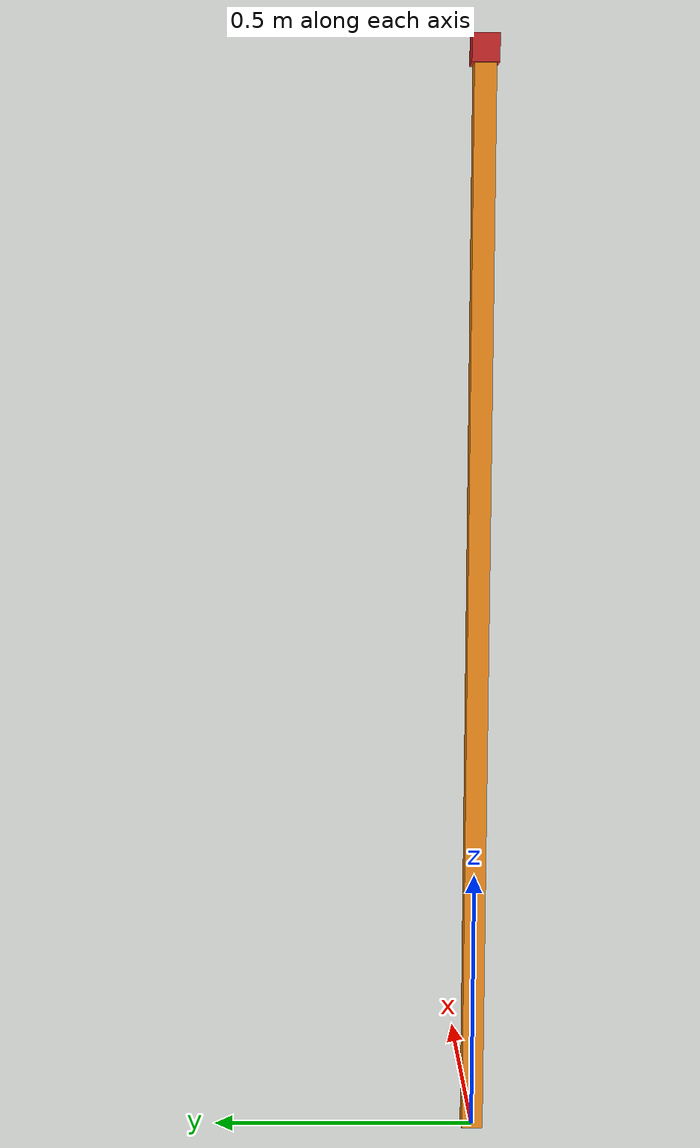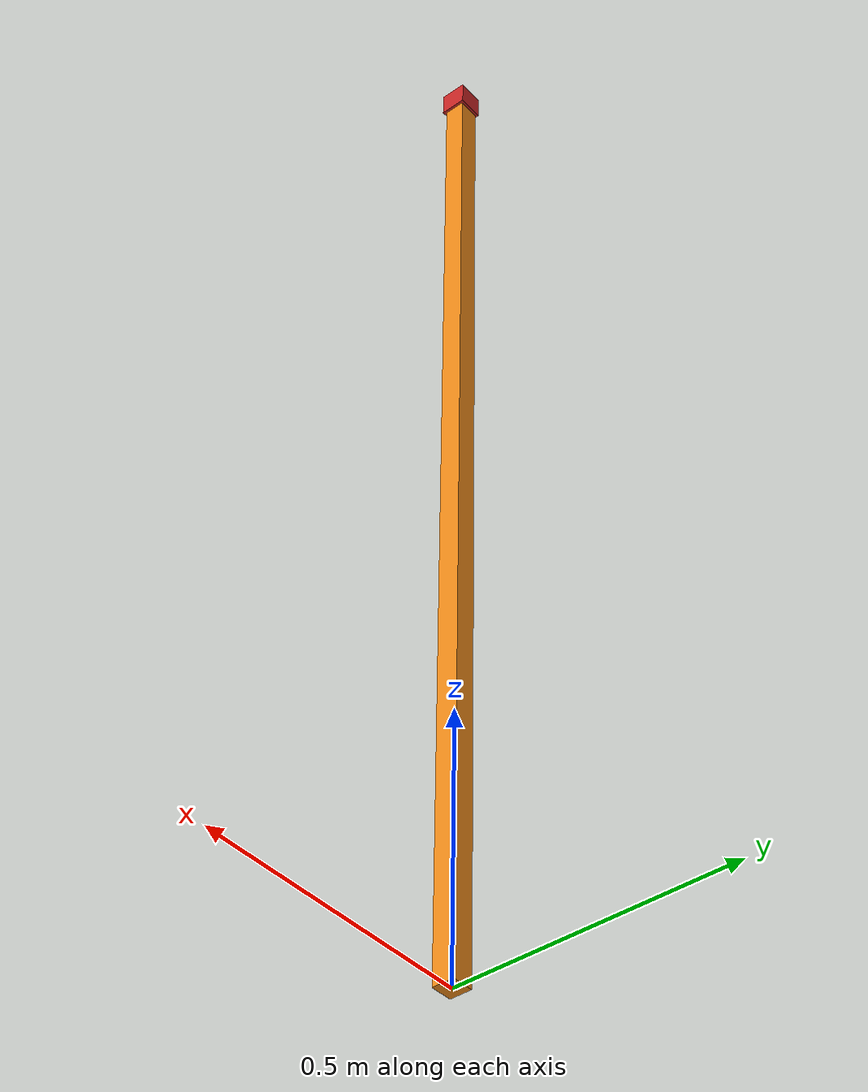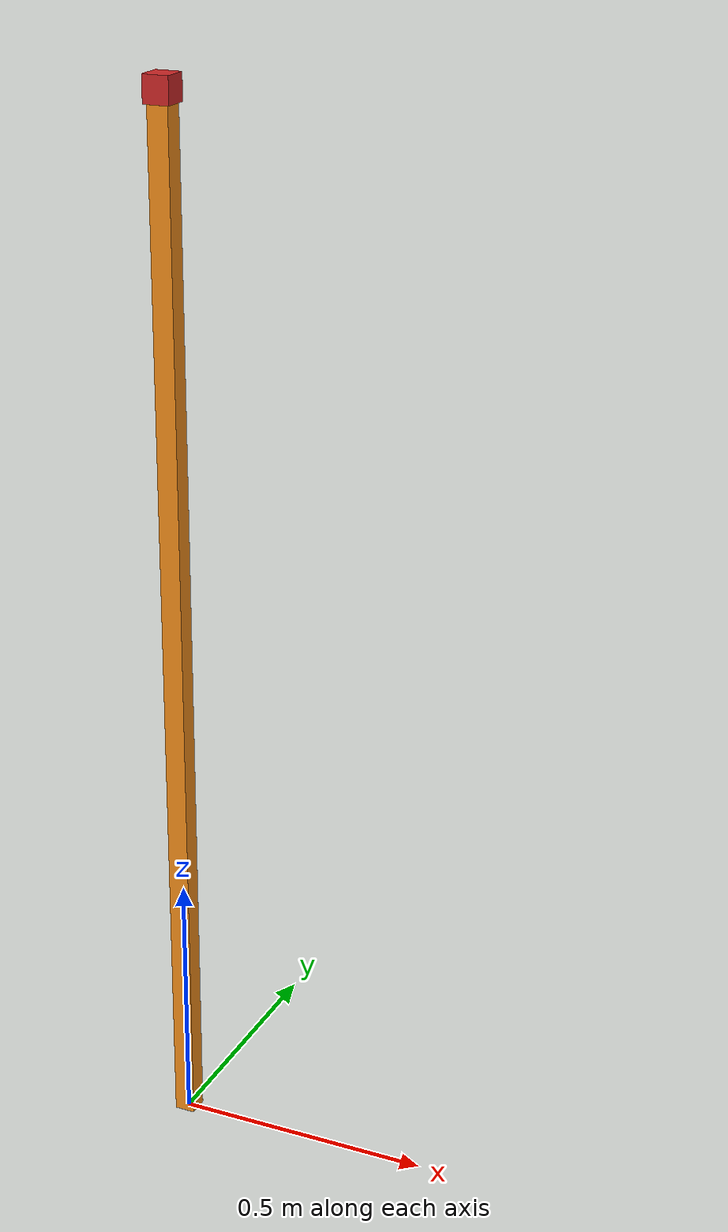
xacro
<?xml version="1.0"?>
<!-- Revolute-Revolute Manipulator -->
<robot name="camera3" xmlns:xacro="http://www.ros.org/wiki/xacro">

  <!-- Constants for robot dimensions -->
  <xacro:property name="PI" value="3.1415926535897931"/>
  <xacro:property name="mass" value="1" /> <!-- arbitrary value for mass -->
  <xacro:property name="width" value="0.04" /> <!-- Square dimensions (widthxwidth) of beams -->
  <xacro:property name="height1" value="2" /> <!-- Link 1 -->
  <xacro:property name="camera3_link" value="0.05" /> <!-- Size of square 'camera' box -->

  <!-- Import all Gazebo-customization elements, including Gazebo colors -->
  <xacro:include filename="$(find camera_description)/urdf/camera3.gazebo" />
  <!-- Import Rviz colors -->
  <xacro:include filename="$(find camera_description)/urdf/materials.xacro" />

  <!-- Used for fixing robot to Gazebo 'base_link' -->
  <link name="world"/>

  <joint name="fixed" type="fixed">
    <parent link="world"/>
    <child link="link1"/>
  </joint>

  <!-- Base Link -->
  <link name="link1">
    <collision>
      <origin xyz="0 0 ${height1/2}" rpy="0 0 0"/>
      <geometry>
	<box size="${width} ${width} ${height1}"/>
      </geometry>
    </collision>

    <visual>
      <origin xyz="0 0 ${height1/2}" rpy="0 0 0"/>
      <geometry>
	<box size="${width} ${width} ${height1}"/>
      </geometry>
      <material name="orange"/>
    </visual>

    <inertial>
      <origin xyz="0 0 ${height1/2}" rpy="0 0 0"/>
      <mass value="${mass}"/>
      <inertia
	  ixx="${mass / 12.0 * (width*width + height1*height1)}" ixy="0.0" ixz="0.0"
	  iyy="${mass / 12.0 * (height1*height1 + width*width)}" iyz="0.0"
	  izz="${mass / 12.0 * (width*width + width*width)}"/>
    </inertial>
  </link>

  <joint name="camera3_joint" type="fixed">
    <axis xyz="0 0 0" />
    <origin xyz="${camera3_link} 0 ${height1}" rpy="0 0 0"/>
    <parent link="link1"/>
    <child link="camera3_link"/>
  </joint>

  <!-- Camera -->
  <link name="camera3_link">
    <collision>
      <origin xyz="${-camera3_link} 0 ${camera3_link/2}" rpy="0 0 0"/>
      <geometry>
	<box size="${camera3_link} ${camera3_link} ${camera3_link}"/>
      </geometry>
    </collision>

    <visual>
      <origin xyz="${-camera3_link} 0 ${camera3_link/2}" rpy="0 0 0"/>
      <geometry>
	<box size="${camera3_link} ${camera3_link} ${camera3_link}"/>
      </geometry>
      <material name="red"/>
    </visual>

    <inertial>
      <mass value="1e-5" />
      <origin xyz="0 0 0" rpy="0 0 0"/>
      <inertia ixx="1e-6" ixy="0" ixz="0" iyy="1e-6" iyz="0" izz="1e-6" />
    </inertial>
  </link>

  <!-- generate an optical frame http://www.ros.org/reps/rep-0103.html#suffix-frames
      so that ros and opencv can operate on the camera frame correctly -->
  <joint name="camera3_optical_joint" type="fixed">
    <!-- these values have to be these values otherwise the gazebo camera image
        won't be aligned properly with the frame it is supposedly originating from -->
    <origin xyz="0 0 0" rpy="${-pi/2} 0 ${-pi/2}"/>
    <parent link="camera3_link"/>
    <child link="camera3_link_optical"/>
  </joint>

  <link name="camera3_link_optical">
  </link>

</robot>
